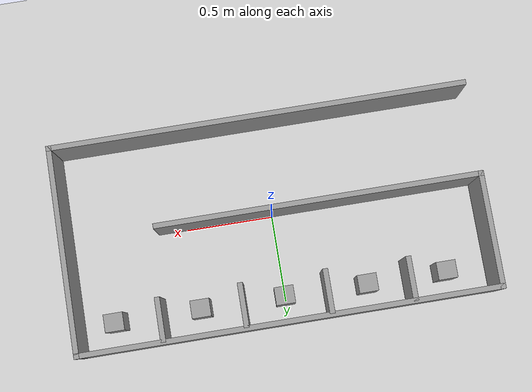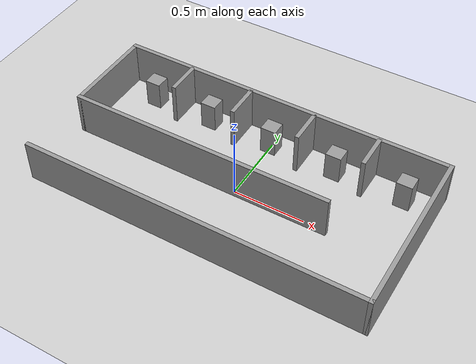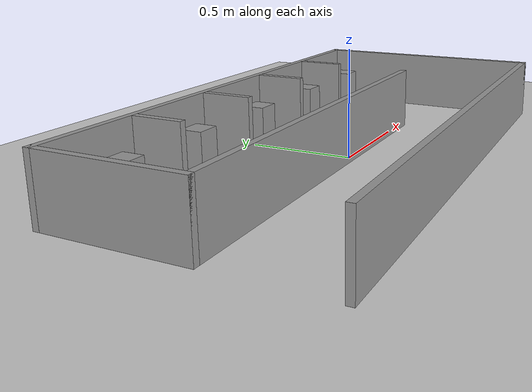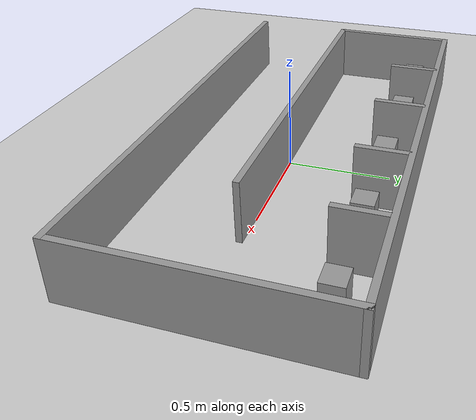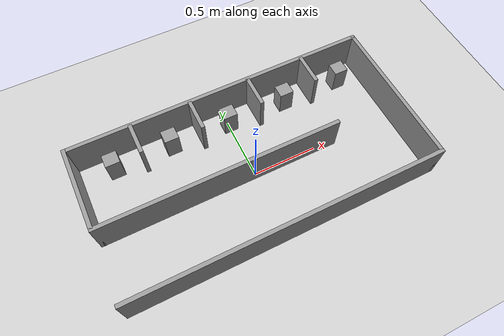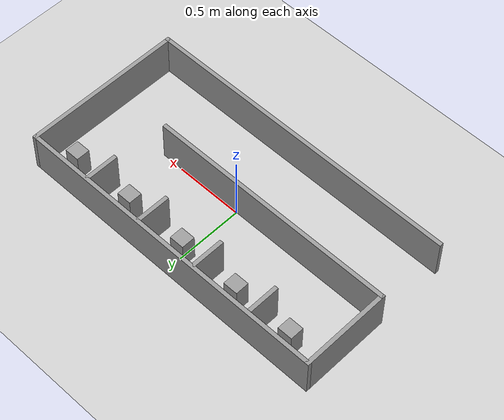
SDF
<sdf version="1.7">
 <world name="default">
  <light name="sun" type="directional">
   <pose>0 0 10 0 -0 0</pose>
   <diffuse>0.8 0.8 0.8 1</diffuse>
   <specular>0.2 0.2 0.2 1</specular>
   <attenuation>
    <range>1000</range>
    <constant>0.9</constant>
    <linear>0.01</linear>
    <quadratic>0.001</quadratic>
   </attenuation>
   <direction>-0.5 0.1 -0.9</direction>
   <spot><inner_angle>0</inner_angle><outer_angle>0</outer_angle><falloff>0</falloff></spot>
  </light>
  <model name="ground_plane">
   <static>1</static>
   <link name="link">
    <collision name="collision">
     <geometry><plane><normal>0 0 1</normal><size>100 100</size></plane></geometry>
     <surface>
      <contact><collide_bitmask>65535</collide_bitmask></contact>
      <friction><ode><mu>100</mu><mu2>50</mu2></ode></friction>
     </surface>
    </collision>
    <visual name="visual">
     <cast_shadows>0</cast_shadows>
     <geometry><plane><normal>0 0 1</normal><size>100 100</size></plane></geometry>
     <material>
      <script><uri>file://media/materials/scripts/gazebo.material</uri><name>Gazebo/Grey</name></script>
     </material>
    </visual>
   </link>
  </model>
  <gravity>0 0 -9.8</gravity>
  <magnetic_field>6e-06 2.3e-05 -4.2e-05</magnetic_field>
  <atmosphere type="adiabatic"/>
  <physics type="ode">
   <max_step_size>0.001</max_step_size>
   <real_time_factor>1</real_time_factor>
   <real_time_update_rate>1000</real_time_update_rate>
  </physics>
  <scene><ambient>0.4 0.4 0.4 1</ambient><background>0.7 0.7 0.7 1</background><shadows>1</shadows></scene>
  <audio><device>default</device></audio>
  <spherical_coordinates>
   <surface_model>EARTH_WGS84</surface_model>
   <latitude_deg>0</latitude_deg>
   <longitude_deg>0</longitude_deg>
   <elevation>0</elevation>
   <heading_deg>0</heading_deg>
  </spherical_coordinates>
  <model name="wrg_map">
   <pose>-0.004192 0.038069 0 0 -0 0</pose>
   <link name="Wall_17">
    <collision name="Wall_17_Collision">
     <geometry><box><size>2.4 0.03 0.3</size></box></geometry>
     <pose>0 0 0.15 0 -0 0</pose>
    </collision>
    <visual name="Wall_17_Visual">
     <pose>0 0 0.15 0 -0 0</pose>
     <geometry><box><size>2.4 0.03 0.3</size></box></geometry>
     <material>
      <script><uri>file://media/materials/scripts/gazebo.material</uri><name>Gazebo/Grey</name></script>
      <ambient>1 1 1 1</ambient>
     </material>
     <meta><layer>0</layer></meta>
    </visual>
    <pose>0 -0.585 0 0 -0 0</pose>
   </link>
   <link name="Wall_31">
    <collision name="Wall_31_Collision">
     <geometry><box><size>1.2 0.03 0.3</size></box></geometry>
     <pose>0 0 0.15 0 -0 0</pose>
    </collision>
    <visual name="Wall_31_Visual">
     <pose>0 0 0.15 0 -0 0</pose>
     <geometry><box><size>1.2 0.03 0.3</size></box></geometry>
     <material>
      <script><uri>file://media/materials/scripts/gazebo.material</uri><name>Gazebo/Grey</name></script>
      <ambient>1 1 1 1</ambient>
     </material>
     <meta><layer>0</layer></meta>
    </visual>
    <pose>1.185 0 0 0 -0 1.5708</pose>
   </link>
   <link name="Wall_33">
    <collision name="Wall_33_Collision">
     <geometry><box><size>2.4 0.03 0.3</size></box></geometry>
     <pose>0 0 0.15 0 -0 0</pose>
    </collision>
    <visual name="Wall_33_Visual">
     <pose>0 0 0.15 0 -0 0</pose>
     <geometry><box><size>2.4 0.03 0.3</size></box></geometry>
     <material>
      <script><uri>file://media/materials/scripts/gazebo.material</uri><name>Gazebo/Grey</name></script>
      <ambient>1 1 1 1</ambient>
     </material>
     <meta><layer>0</layer></meta>
    </visual>
    <pose>0 0.585 0 0 -0 3.14159</pose>
   </link>
   <link name="Wall_35">
    <collision name="Wall_35_Collision">
     <geometry><box><size>0.67 0.03 0.3</size></box></geometry>
     <pose>0 0 0.15 0 -0 0</pose>
    </collision>
    <visual name="Wall_35_Visual">
     <pose>0 0 0.15 0 -0 0</pose>
     <geometry><box><size>0.67 0.03 0.3</size></box></geometry>
     <material>
      <script><uri>file://media/materials/scripts/gazebo.material</uri><name>Gazebo/Grey</name></script>
      <ambient>1 1 1 1</ambient>
     </material>
     <meta><layer>0</layer></meta>
    </visual>
    <pose>-1.185 0.265 0 0 -0 -1.5708</pose>
   </link>
   <link name="Wall_37">
    <collision name="Wall_37_Collision">
     <geometry><box><size>1.87 0.03 0.3</size></box></geometry>
     <pose>0 0 0.15 0 -0 0</pose>
    </collision>
    <visual name="Wall_37_Visual">
     <pose>0 0 0.15 0 -0 0</pose>
     <geometry><box><size>1.87 0.03 0.3</size></box></geometry>
     <material>
      <script><uri>file://media/materials/scripts/gazebo.material</uri><name>Gazebo/Grey</name></script>
      <ambient>1 1 1 1</ambient>
     </material>
     <meta><layer>0</layer></meta>
    </visual>
    <pose>-0.265 -0.055 0 0 -0 0</pose>
   </link>
   <link name="Wall_39">
    <collision name="Wall_39_Collision">
     <geometry><box><size>0.25 0.03 0.3</size></box></geometry>
     <pose>0 0 0.15 0 -0 0</pose>
    </collision>
    <visual name="Wall_39_Visual">
     <pose>0 0 0.15 0 -0 0</pose>
     <geometry><box><size>0.25 0.03 0.3</size></box></geometry>
     <material>
      <script><uri>file://media/materials/scripts/gazebo.material</uri><name>Gazebo/Grey</name></script>
      <ambient>1 1 1 1</ambient>
     </material>
     <meta><layer>0</layer></meta>
    </visual>
    <pose>-0.698381 0.462042 0 0 -0 -1.5708</pose>
   </link>
   <link name="Wall_41">
    <collision name="Wall_41_Collision">
     <geometry><box><size>0.25 0.03 0.3</size></box></geometry>
     <pose>0 0 0.15 0 -0 0</pose>
    </collision>
    <visual name="Wall_41_Visual">
     <pose>0 0 0.15 0 -0 0</pose>
     <geometry><box><size>0.25 0.03 0.3</size></box></geometry>
     <material>
      <script><uri>file://media/materials/scripts/gazebo.material</uri><name>Gazebo/Grey</name></script>
      <ambient>1 1 1 1</ambient>
     </material>
     <meta><layer>0</layer></meta>
    </visual>
    <pose>-0.233381 0.456042 0 0 -0 -1.5708</pose>
   </link>
   <link name="Wall_43">
    <collision name="Wall_43_Collision">
     <geometry><box><size>0.25 0.03 0.3</size></box></geometry>
     <pose>0 0 0.15 0 -0 0</pose>
    </collision>
    <visual name="Wall_43_Visual">
     <pose>0 0 0.15 0 -0 0</pose>
     <geometry><box><size>0.25 0.03 0.3</size></box></geometry>
     <material>
      <script><uri>file://media/materials/scripts/gazebo.material</uri><name>Gazebo/Grey</name></script>
      <ambient>1 1 1 1</ambient>
     </material>
     <meta><layer>0</layer></meta>
    </visual>
    <pose>0.243419 0.456315 0 0 -0 -1.5708</pose>
   </link>
   <link name="Wall_45">
    <collision name="Wall_45_Collision">
     <geometry><box><size>0.25 0.03 0.3</size></box></geometry>
     <pose>0 0 0.15 0 -0 0</pose>
    </collision>
    <visual name="Wall_45_Visual">
     <pose>0 0 0.15 0 -0 0</pose>
     <geometry><box><size>0.25 0.03 0.3</size></box></geometry>
     <material>
      <script><uri>file://media/materials/scripts/gazebo.material</uri><name>Gazebo/Grey</name></script>
      <ambient>1 1 1 1</ambient>
     </material>
     <meta><layer>0</layer></meta>
    </visual>
    <pose>0.705793 0.461287 0 0 -0 -1.5708</pose>
   </link>
   <static>1</static>
  </model>
  <model name="unit_box">
   <pose>-0.919205 0.47996 0.10167 0 0 -1.8e-05</pose>
   <link name="link">
    <inertial>
     <mass>1</mass>
     <inertia>
      <ixx>0.166667</ixx>
      <ixy>0</ixy>
      <ixz>0</ixz>
      <iyy>0.166667</iyy>
      <iyz>0</iyz>
      <izz>0.166667</izz>
     </inertia>
    </inertial>
    <collision name="collision"><geometry><box><size>0.109382 0.101587 0.20334</size></box></geometry></collision>
    <visual name="visual">
     <geometry><box><size>0.109382 0.101587 0.20334</size></box></geometry>
     <material>
      <script><name>Gazebo/Grey</name><uri>file://media/materials/scripts/gazebo.material</uri></script>
     </material>
    </visual>
   </link>
  </model>
  <model name="unit_box_clone">
   <pose>-0.467781 0.480636 0.10167 0 -0 1e-05</pose>
   <link name="link">
    <inertial>
     <mass>1</mass>
     <inertia>
      <ixx>0.166667</ixx>
      <ixy>0</ixy>
      <ixz>0</ixz>
      <iyy>0.166667</iyy>
      <iyz>0</iyz>
      <izz>0.166667</izz>
     </inertia>
    </inertial>
    <collision name="collision"><geometry><box><size>0.109382 0.101587 0.20334</size></box></geometry></collision>
    <visual name="visual">
     <geometry><box><size>0.109382 0.101587 0.20334</size></box></geometry>
     <material>
      <script><name>Gazebo/Grey</name><uri>file://media/materials/scripts/gazebo.material</uri></script>
     </material>
    </visual>
   </link>
  </model>
  <model name="unit_box_clone_clone">
   <pose>0.00334 0.472659 0.101671 -1.3e-05 -1e-05 0.000262</pose>
   <link name="link">
    <inertial>
     <mass>1</mass>
     <inertia>
      <ixx>0.166667</ixx>
      <ixy>0</ixy>
      <ixz>0</ixz>
      <iyy>0.166667</iyy>
      <iyz>0</iyz>
      <izz>0.166667</izz>
     </inertia>
    </inertial>
    <collision name="collision"><geometry><box><size>0.109382 0.101587 0.20334</size></box></geometry></collision>
    <visual name="visual">
     <geometry><box><size>0.109382 0.101587 0.20334</size></box></geometry>
     <material>
      <script><name>Gazebo/Grey</name><uri>file://media/materials/scripts/gazebo.material</uri></script>
     </material>
    </visual>
   </link>
  </model>
  <model name="unit_box_clone_clone_clone">
   <pose>0.480284 0.469572 0.10167 -0 -1e-06 -4.5e-05</pose>
   <link name="link">
    <inertial>
     <mass>1</mass>
     <inertia>
      <ixx>0.166667</ixx>
      <ixy>0</ixy>
      <ixz>0</ixz>
      <iyy>0.166667</iyy>
      <iyz>0</iyz>
      <izz>0.166667</izz>
     </inertia>
    </inertial>
    <collision name="collision"><geometry><box><size>0.109382 0.101587 0.20334</size></box></geometry></collision>
    <visual name="visual">
     <geometry><box><size>0.109382 0.101587 0.20334</size></box></geometry>
     <material>
      <script><name>Gazebo/Grey</name><uri>file://media/materials/scripts/gazebo.material</uri></script>
     </material>
    </visual>
   </link>
  </model>
  <model name="unit_box_clone_clone_clone_clone">
   <pose>0.96941 0.467793 0.10167 -0 -0 -9e-06</pose>
   <link name="link">
    <inertial>
     <mass>1</mass>
     <inertia>
      <ixx>0.166667</ixx>
      <ixy>0</ixy>
      <ixz>0</ixz>
      <iyy>0.166667</iyy>
      <iyz>0</iyz>
      <izz>0.166667</izz>
     </inertia>
    </inertial>
    <collision name="collision"><geometry><box><size>0.109382 0.101587 0.20334</size></box></geometry></collision>
    <visual name="visual">
     <geometry><box><size>0.109382 0.101587 0.20334</size></box></geometry>
     <material>
      <script><name>Gazebo/Grey</name><uri>file://media/materials/scripts/gazebo.material</uri></script>
     </material>
    </visual>
   </link>
  </model>
 </world>
</sdf>
